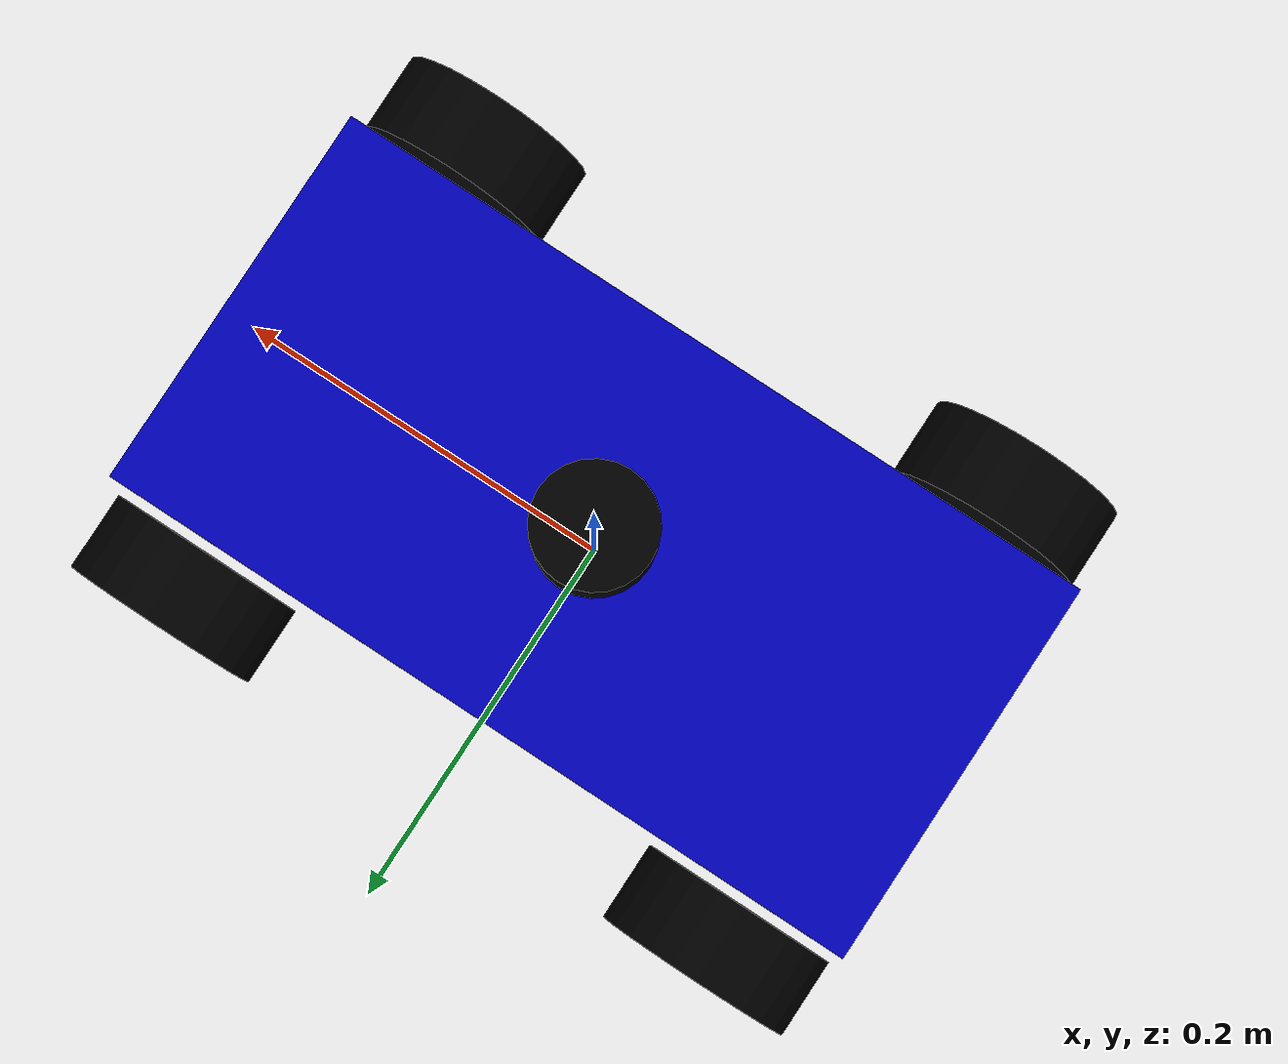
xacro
<?xml version="1.0"?>
<robot xmlns:xacro="http://www.ros.org/wiki/xacro" name="simple_rc_car">

  <!-- Define properties for easy modification -->
  <xacro:property name="chassis_length" value="0.4"/>
  <xacro:property name="chassis_width" value="0.2"/>
  <xacro:property name="chassis_height" value="0.1"/>
  <xacro:property name="chassis_mass" value="5.0"/>

  <xacro:property name="wheel_radius" value="0.05"/>
  <xacro:property name="wheel_width" value="0.04"/>
  <xacro:property name="wheel_mass" value="0.5"/>

  <xacro:property name="wheelbase" value="0.3"/>
  <xacro:property name="track_width" value="0.25"/>

  <!-- Define colors -->
  <material name="blue">
    <color rgba="0 0 0.8 1"/>
  </material>

  <material name="black">
    <color rgba="0 0 0 1"/>
  </material>

  <material name="white">
    <color rgba="1 1 1 1"/>
  </material>

  <!-- Base link (required for ROS 2) -->
  <link name="base_link"/>

  <!-- Chassis link -->
  <link name="chassis">
    <visual>
      <origin xyz="0 0 0" rpy="0 0 0"/>
      <geometry>
        <box size="${chassis_length} ${chassis_width} ${chassis_height}"/>
      </geometry>
      <material name="blue"/>
    </visual>

    <collision>
      <origin xyz="0 0 0" rpy="0 0 0"/>
      <geometry>
        <box size="${chassis_length} ${chassis_width} ${chassis_height}"/>
      </geometry>
    </collision>

    <inertial>
      <origin xyz="0 0 0" rpy="0 0 0"/>
      <mass value="${chassis_mass}"/>
      <inertia
        ixx="${(1/12) * chassis_mass * (chassis_width*chassis_width + chassis_height*chassis_height)}"
        ixy="0.0" ixz="0.0"
        iyy="${(1/12) * chassis_mass * (chassis_length*chassis_length + chassis_height*chassis_height)}"
        iyz="0.0"
        izz="${(1/12) * chassis_mass * (chassis_length*chassis_length + chassis_width*chassis_width)}"/>
    </inertial>
  </link>

  <!-- Joint connecting base_link to chassis -->
  <joint name="base_to_chassis" type="fixed">
    <parent link="base_link"/>
    <child link="chassis"/>
    <origin xyz="0 0 ${wheel_radius}" rpy="0 0 0"/>
  </joint>

  <!-- Wheel macro for easy duplication -->
  <xacro:macro name="wheel" params="prefix suffix reflect_lr reflect_fb">
    <link name="${prefix}_${suffix}_wheel">
      <visual>
        <origin xyz="0 0 0" rpy="${pi/2} 0 0"/>
        <geometry>
          <cylinder radius="${wheel_radius}" length="${wheel_width}"/>
        </geometry>
        <material name="black"/>
      </visual>

      <collision>
        <origin xyz="0 0 0" rpy="${pi/2} 0 0"/>
        <geometry>
          <cylinder radius="${wheel_radius}" length="${wheel_width}"/>
        </geometry>
      </collision>

      <inertial>
        <origin xyz="0 0 0" rpy="${pi/2} 0 0"/>
        <mass value="${wheel_mass}"/>
        <inertia
          ixx="${(1/12) * wheel_mass * (3*wheel_radius*wheel_radius + wheel_width*wheel_width)}"
          ixy="0.0" ixz="0.0"
          iyy="${(1/12) * wheel_mass * (3*wheel_radius*wheel_radius + wheel_width*wheel_width)}"
          iyz="0.0"
          izz="${(1/2) * wheel_mass * wheel_radius*wheel_radius}"/>
      </inertial>
    </link>

    <joint name="${prefix}_${suffix}_wheel_joint" type="continuous">
      <parent link="chassis"/>
      <child link="${prefix}_${suffix}_wheel"/>
      <origin xyz="${reflect_fb * wheelbase/2} ${reflect_lr * track_width/2} 0" rpy="0 0 0"/>
      <axis xyz="0 1 0"/>
      <dynamics damping="0.1" friction="0.1"/>
    </joint>
  </xacro:macro>

  <!-- Create all four wheels -->
  <xacro:wheel prefix="front" suffix="left" reflect_lr="1" reflect_fb="1"/>
  <xacro:wheel prefix="front" suffix="right" reflect_lr="-1" reflect_fb="1"/>
  <xacro:wheel prefix="rear" suffix="left" reflect_lr="1" reflect_fb="-1"/>
  <xacro:wheel prefix="rear" suffix="right" reflect_lr="-1" reflect_fb="-1"/>

  <!-- Lidar Link -->
  <link name="lidar_link">
    <visual>
      <origin xyz="0 0 0" rpy="0 0 0"/>
      <geometry>
        <cylinder radius="0.03" length="0.04"/>
      </geometry>
      <material name="black"/>
    </visual>

    <collision>
      <origin xyz="0 0 0" rpy="0 0 0"/>
      <geometry>
        <cylinder radius="0.03" length="0.04"/>
      </geometry>
    </collision>

    <inertial>
      <origin xyz="0 0 0" rpy="0 0 0"/>
      <mass value="0.125"/>
      <inertia
        ixx="0.000020833" ixy="0.0" ixz="0.0"
        iyy="0.000020833" iyz="0.0"
        izz="0.000028125"/>
    </inertial>
  </link>

  <!-- Lidar Joint (fixed to top of chassis) -->
  <joint name="lidar_joint" type="fixed">
    <parent link="chassis"/>
    <child link="lidar_link"/>
    <origin xyz="0 0 ${chassis_height/2 + 0.02}" rpy="0 0 0"/>
  </joint>

  <!-- Gazebo-specific configurations -->
  <gazebo reference="chassis">
    <material>Gazebo/Blue</material>
    <mu1>0.2</mu1>
    <mu2>0.2</mu2>
  </gazebo>

  <gazebo reference="front_left_wheel">
    <material>Gazebo/Black</material>
    <mu1>100.0</mu1>
    <mu2>50.0</mu2>
    <kp>10000000.0</kp>
    <kd>1.0</kd>
    <minDepth>0.005</minDepth>
    <maxVel>1.0</maxVel>
    <fdir1>1 0 0</fdir1>
  </gazebo>

  <gazebo reference="front_right_wheel">
    <material>Gazebo/Black</material>
    <mu1>100.0</mu1>
    <mu2>50.0</mu2>
    <kp>10000000.0</kp>
    <kd>1.0</kd>
    <minDepth>0.005</minDepth>
    <maxVel>1.0</maxVel>
    <fdir1>1 0 0</fdir1>
  </gazebo>

  <gazebo reference="rear_left_wheel">
    <material>Gazebo/Black</material>
    <mu1>100.0</mu1>
    <mu2>50.0</mu2>
    <kp>10000000.0</kp>
    <kd>1.0</kd>
    <minDepth>0.005</minDepth>
    <maxVel>1.0</maxVel>
    <fdir1>1 0 0</fdir1>
  </gazebo>

  <gazebo reference="rear_right_wheel">
    <material>Gazebo/Black</material>
    <mu1>100.0</mu1>
    <mu2>50.0</mu2>
    <kp>10000000.0</kp>
    <kd>1.0</kd>
    <minDepth>0.005</minDepth>
    <maxVel>1.0</maxVel>
    <fdir1>1 0 0</fdir1>
  </gazebo>

  <!-- Lidar Sensor Gazebo Plugin -->
  <gazebo reference="lidar_link">
    <sensor name="lidar_sensor" type="ray">
      <always_on>true</always_on>
      <update_rate>10</update_rate>
      <visualize>true</visualize>
      <ray>
        <scan>
          <horizontal>
            <samples>360</samples>
            <resolution>1</resolution>
            <min_angle>-3.14159</min_angle>
            <max_angle>3.14159</max_angle>
          </horizontal>
        </scan>
        <range>
          <min>0.12</min>
          <max>10.0</max>
          <resolution>0.01</resolution>
        </range>
        <noise>
          <type>gaussian</type>
          <mean>0.0</mean>
          <stddev>0.01</stddev>
        </noise>
      </ray>
      <plugin name="gazebo_ros_laser_controller" filename="libgazebo_ros_ray_sensor.so">
        <ros>
          <remapping>~/out:=scan</remapping>
        </ros>
        <output_type>sensor_msgs/LaserScan</output_type>
        <frame_name>lidar_link</frame_name>
      </plugin>
    </sensor>
  </gazebo>

  <!-- Differential Drive Plugin -->
  <gazebo>
    <plugin name="diff_drive" filename="libgazebo_ros_diff_drive.so">
      <!-- Update rate in Hz -->
      <update_rate>50</update_rate>

      <!-- Wheels -->
      <left_joint>rear_left_wheel_joint</left_joint>
      <right_joint>rear_right_wheel_joint</right_joint>

      <!-- Kinematics -->
      <wheel_separation>${track_width}</wheel_separation>
      <wheel_diameter>${2*wheel_radius}</wheel_diameter>

      <!-- Limits -->
      <max_wheel_torque>20</max_wheel_torque>
      <max_wheel_acceleration>1.0</max_wheel_acceleration>

      <!-- Output -->
      <publish_odom>true</publish_odom>
      <publish_odom_tf>true</publish_odom_tf>
      <publish_wheel_tf>true</publish_wheel_tf>

      <odometry_frame>odom</odometry_frame>
      <robot_base_frame>base_link</robot_base_frame>

      <!-- Topics -->
      <command_topic>cmd_vel</command_topic>
      <odometry_topic>odom</odometry_topic>
    </plugin>
  </gazebo>

  <!-- Joint State Publisher Plugin -->
  <gazebo>
    <plugin name="joint_state_publisher" filename="libgazebo_ros_joint_state_publisher.so">
      <update_rate>50</update_rate>
      <joint_name>front_left_wheel_joint</joint_name>
      <joint_name>front_right_wheel_joint</joint_name>
      <joint_name>rear_left_wheel_joint</joint_name>
      <joint_name>rear_right_wheel_joint</joint_name>
    </plugin>
  </gazebo>

</robot>
